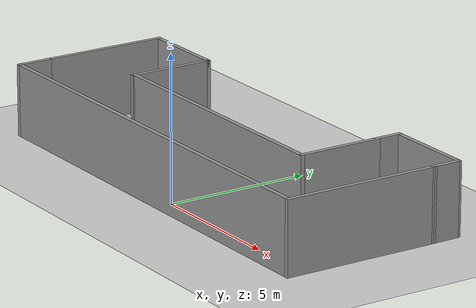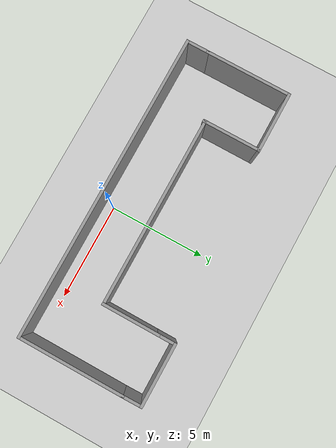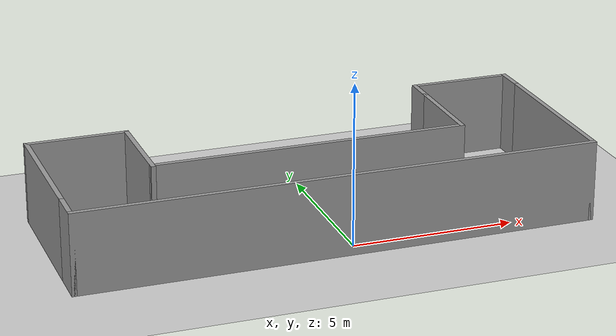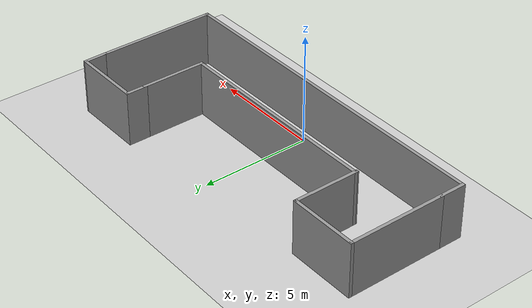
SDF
<sdf version="1.6">
 <world name="default">
  <light name="sun" type="directional">
   <pose>0 0 10 0 -0 0</pose>
   <diffuse>0.8 0.8 0.8 1</diffuse>
   <specular>0.2 0.2 0.2 1</specular>
   <attenuation>
    <range>1000</range>
    <constant>0.9</constant>
    <linear>0.01</linear>
    <quadratic>0.001</quadratic>
   </attenuation>
   <direction>-0.5 0.1 -0.9</direction>
  </light>
  <model name="ground_plane">
   <static>1</static>
   <link name="link">
    <collision name="collision">
     <geometry><plane><normal>0 0 1</normal><size>100 100</size></plane></geometry>
     <surface>
      <contact><collide_bitmask>65535</collide_bitmask></contact>
      <friction><ode><mu>100</mu><mu2>50</mu2></ode></friction>
     </surface>
    </collision>
    <visual name="visual">
     <cast_shadows>0</cast_shadows>
     <geometry><plane><normal>0 0 1</normal><size>100 100</size></plane></geometry>
     <material>
      <script><uri>file://media/materials/scripts/gazebo.material</uri><name>Gazebo/Grey</name></script>
     </material>
    </visual>
   </link>
  </model>
  <gravity>0 0 -9.8</gravity>
  <magnetic_field>6e-06 2.3e-05 -4.2e-05</magnetic_field>
  <atmosphere type="adiabatic"/>
  <physics name="default_physics" default="0" type="ode">
   <max_step_size>0.001</max_step_size>
   <real_time_factor>1</real_time_factor>
   <real_time_update_rate>1000</real_time_update_rate>
  </physics>
  <scene><ambient>0.4 0.4 0.4 1</ambient><background>0.7 0.7 0.7 1</background><shadows>1</shadows></scene>
  <spherical_coordinates>
   <surface_model>EARTH_WGS84</surface_model>
   <latitude_deg>0</latitude_deg>
   <longitude_deg>0</longitude_deg>
   <elevation>0</elevation>
   <heading_deg>0</heading_deg>
  </spherical_coordinates>
  <model name="uwall">
   <pose>-0.55939 2.59944 0 0 -0 0</pose>
   <link name="Wall_18">
    <collision name="Wall_18_Collision">
     <geometry><box><size>3 0.15 2.5</size></box></geometry>
     <pose>0 0 1.25 0 -0 0</pose>
    </collision>
    <visual name="Wall_18_Visual">
     <pose>0 0 1.25 0 -0 0</pose>
     <geometry><box><size>3 0.15 2.5</size></box></geometry>
     <material>
      <script><uri>file://media/materials/scripts/gazebo.material</uri><name>Gazebo/Grey</name></script>
      <ambient>1 1 1 1</ambient>
     </material>
     <meta><layer>0</layer></meta>
    </visual>
    <pose>4.81044 0.874451 0 0 0 -1.5708</pose>
   </link>
   <link name="Wall_19">
    <collision name="Wall_19_Collision">
     <geometry><box><size>9.83756 0.15 2.5</size></box></geometry>
     <pose>0 0 1.25 0 -0 0</pose>
    </collision>
    <visual name="Wall_19_Visual">
     <pose>0 0 1.25 0 -0 0</pose>
     <geometry><box><size>9.83756 0.15 2.5</size></box></geometry>
     <material>
      <script><uri>file://media/materials/scripts/gazebo.material</uri><name>Gazebo/Grey</name></script>
      <ambient>1 1 1 1</ambient>
     </material>
     <meta><layer>0</layer></meta>
    </visual>
    <pose>-0.03334 -0.550549 0 0 -0 3.14159</pose>
   </link>
   <link name="Wall_20">
    <collision name="Wall_20_Collision">
     <geometry><box><size>3 0.15 2.5</size></box></geometry>
     <pose>0 0 1.25 0 -0 0</pose>
    </collision>
    <visual name="Wall_20_Visual">
     <pose>0 0 1.25 0 -0 0</pose>
     <geometry><box><size>3 0.15 2.5</size></box></geometry>
     <material>
      <script><uri>file://media/materials/scripts/gazebo.material</uri><name>Gazebo/Grey</name></script>
      <ambient>1 1 1 1</ambient>
     </material>
     <meta><layer>0</layer></meta>
    </visual>
    <pose>-4.87712 0.820949 0 0 -0 1.5708</pose>
   </link>
   <link name="Wall_21">
    <collision name="Wall_21_Collision">
     <geometry><box><size>3.19843 0.15 2.5</size></box></geometry>
     <pose>0 0 1.25 0 -0 0</pose>
    </collision>
    <visual name="Wall_21_Visual">
     <pose>0 0 1.25 0 -0 0</pose>
     <geometry><box><size>3.19843 0.15 2.5</size></box></geometry>
     <material>
      <script><uri>file://media/materials/scripts/gazebo.material</uri><name>Gazebo/Grey</name></script>
      <ambient>1 1 1 1</ambient>
     </material>
     <meta><layer>0</layer></meta>
    </visual>
    <pose>-6.40134 2.29945 0 0 -0 3.14159</pose>
   </link>
   <link name="Wall_24">
    <collision name="Wall_24_Collision">
     <geometry><box><size>4.5 0.15 2.5</size></box></geometry>
     <pose>0 0 1.25 0 -0 0</pose>
    </collision>
    <visual name="Wall_24_Visual">
     <pose>0 0 1.25 0 -0 0</pose>
     <geometry><box><size>4.5 0.15 2.5</size></box></geometry>
     <material>
      <script><uri>file://media/materials/scripts/gazebo.material</uri><name>Gazebo/Grey</name></script>
      <ambient>1 1 1 1</ambient>
     </material>
     <meta><layer>0</layer></meta>
    </visual>
    <pose>-7.92555 0.124451 0 0 0 -1.5708</pose>
   </link>
   <link name="Wall_26">
    <collision name="Wall_26_Collision">
     <geometry><box><size>1.25 0.15 2.5</size></box></geometry>
     <pose>0 0 1.25 0 -0 0</pose>
    </collision>
    <visual name="Wall_26_Visual">
     <pose>0 0 1.25 0 -0 0</pose>
     <geometry><box><size>1.25 0.15 2.5</size></box></geometry>
     <material>
      <script><uri>file://media/materials/scripts/gazebo.material</uri><name>Gazebo/Grey</name></script>
      <ambient>1 1 1 1</ambient>
     </material>
     <meta><layer>0</layer></meta>
    </visual>
    <pose>-7.92555 -2.60055 0 0 0 -1.5708</pose>
   </link>
   <link name="Wall_27">
    <collision name="Wall_27_Collision">
     <geometry><box><size>16 0.15 2.5</size></box></geometry>
     <pose>0 0 1.25 0 -0 0</pose>
    </collision>
    <visual name="Wall_27_Visual">
     <pose>0 0 1.25 0 -0 0</pose>
     <geometry><box><size>16 0.15 2.5</size></box></geometry>
     <material>
      <script><uri>file://media/materials/scripts/gazebo.material</uri><name>Gazebo/Grey</name></script>
      <ambient>1 1 1 1</ambient>
     </material>
     <meta><layer>0</layer></meta>
    </visual>
    <pose>-0.000549 -3.15055 0 0 -0 0</pose>
   </link>
   <link name="Wall_29">
    <collision name="Wall_29_Collision">
     <geometry><box><size>5.5 0.15 2.5</size></box></geometry>
     <pose>0 0 1.25 0 -0 0</pose>
    </collision>
    <visual name="Wall_29_Visual">
     <pose>0 0 1.25 0 -0 0</pose>
     <geometry><box><size>5.5 0.15 2.5</size></box></geometry>
     <material>
      <script><uri>file://media/materials/scripts/gazebo.material</uri><name>Gazebo/Grey</name></script>
      <ambient>1 1 1 1</ambient>
     </material>
     <meta><layer>0</layer></meta>
    </visual>
    <pose>7.92445 -0.475549 0 0 -0 1.5708</pose>
   </link>
   <link name="Wall_32">
    <collision name="Wall_32_Collision">
     <geometry><box><size>1 0.15 2.5</size></box></geometry>
     <pose>0 0 1.25 0 -0 0</pose>
    </collision>
    <visual name="Wall_32_Visual">
     <pose>0 0 1.25 0 -0 0</pose>
     <geometry><box><size>1 0.15 2.5</size></box></geometry>
     <material>
      <script><uri>file://media/materials/scripts/gazebo.material</uri><name>Gazebo/Grey</name></script>
      <ambient>1 1 1 1</ambient>
     </material>
     <meta><layer>0</layer></meta>
    </visual>
    <pose>4.81044 2.72445 0 0 -0 1.5708</pose>
   </link>
   <link name="Wall_33">
    <collision name="Wall_33_Collision">
     <geometry><box><size>3.25 0.15 2.5</size></box></geometry>
     <pose>0 0 1.25 0 -0 0</pose>
    </collision>
    <visual name="Wall_33_Visual">
     <pose>0 0 1.25 0 -0 0</pose>
     <geometry><box><size>3.25 0.15 2.5</size></box></geometry>
     <material>
      <script><uri>file://media/materials/scripts/gazebo.material</uri><name>Gazebo/Grey</name></script>
      <ambient>1 1 1 1</ambient>
     </material>
     <meta><layer>0</layer></meta>
    </visual>
    <pose>6.36044 3.14945 0 0 -0 0</pose>
   </link>
   <link name="Wall_34">
    <collision name="Wall_34_Collision">
     <geometry><box><size>1.1001 0.15 2.5</size></box></geometry>
     <pose>0 0 1.25 0 -0 0</pose>
    </collision>
    <visual name="Wall_34_Visual">
     <pose>0 0 1.25 0 -0 0</pose>
     <geometry><box><size>1.1001 0.15 2.5</size></box></geometry>
     <material>
      <script><uri>file://media/materials/scripts/gazebo.material</uri><name>Gazebo/Grey</name></script>
      <ambient>1 1 1 1</ambient>
     </material>
     <meta><layer>0</layer></meta>
    </visual>
    <pose>7.91745 2.67445 0 0 0 -1.55605</pose>
   </link>
   <static>1</static>
  </model>
 </world>
</sdf>
